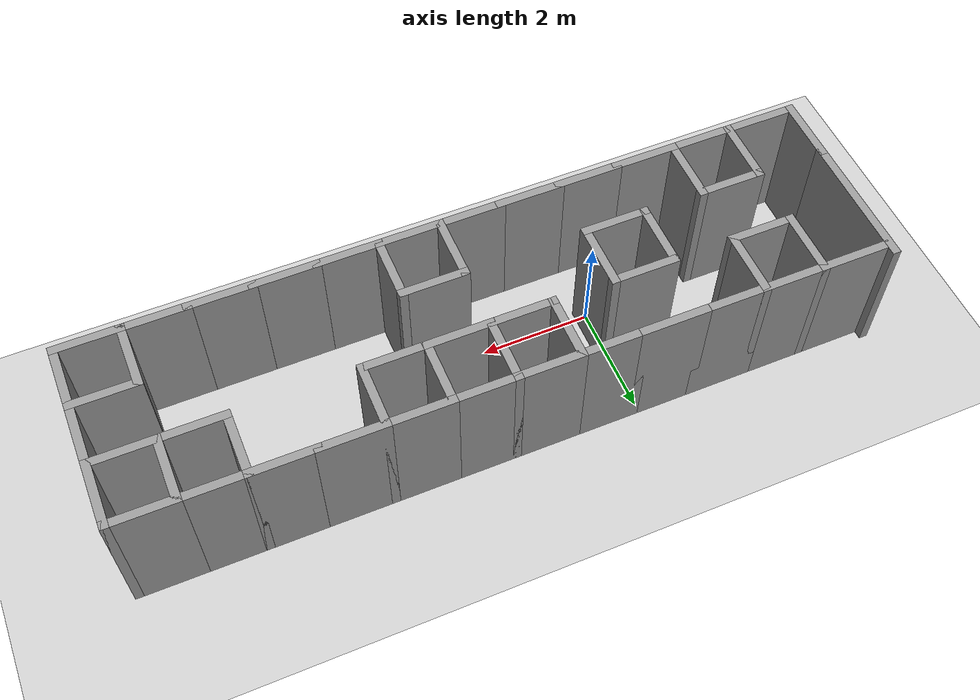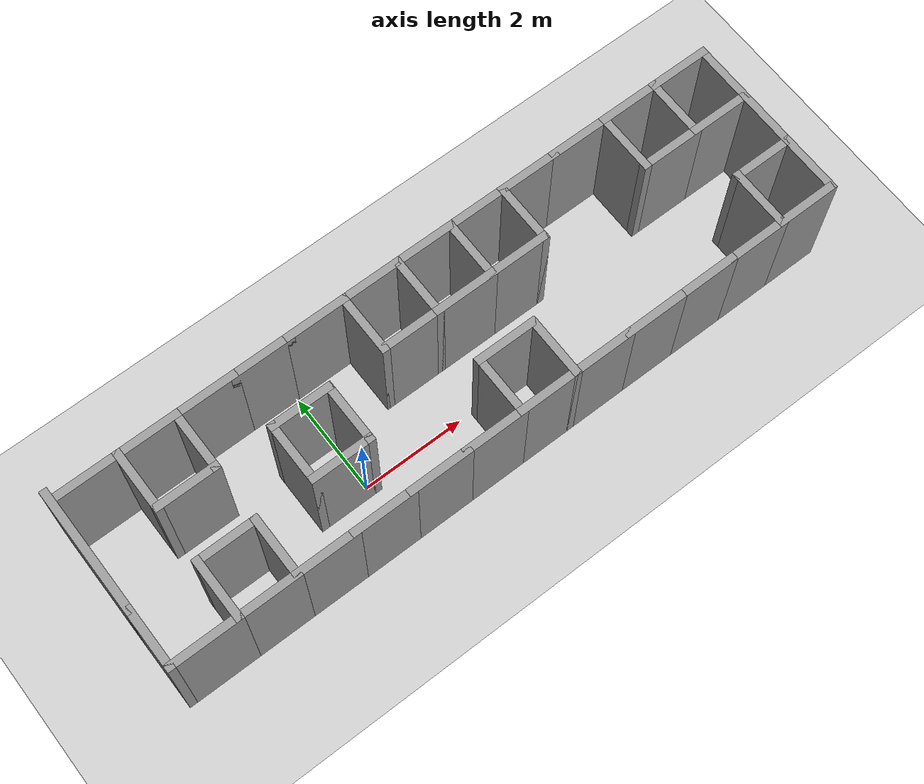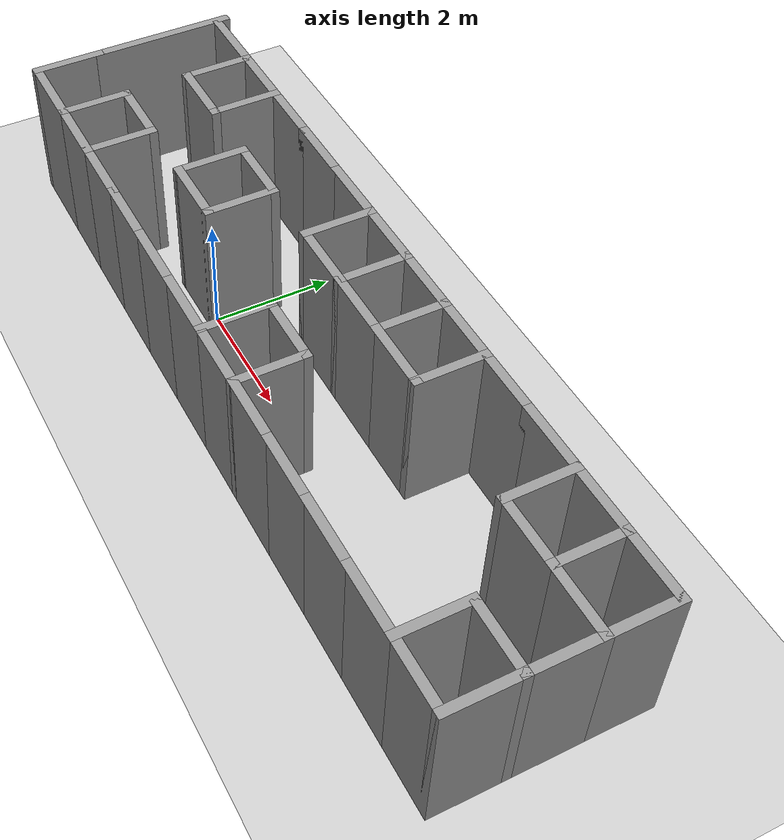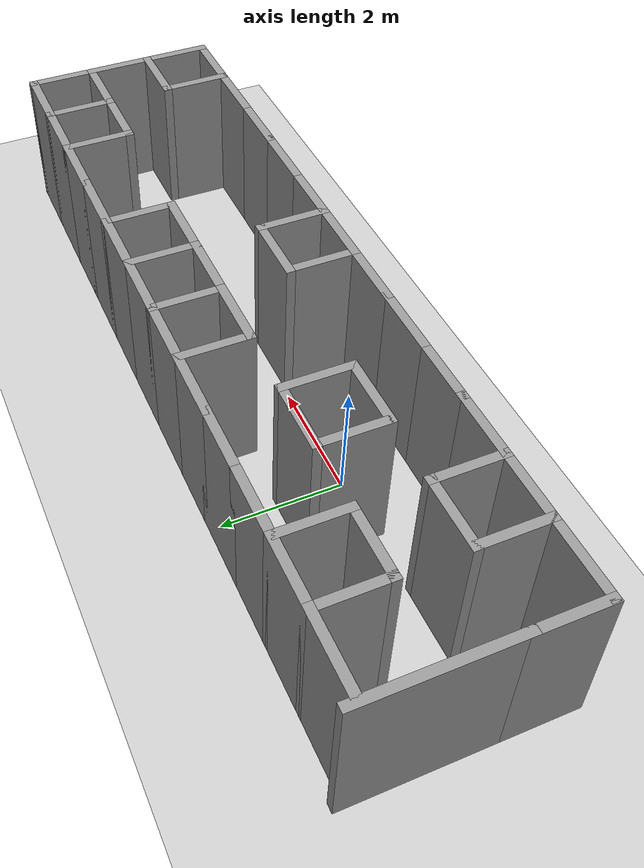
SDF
<sdf version="1.7">
 <world name="default">
  <light name="sun" type="directional">
   <pose>0 0 10 0 -0 0</pose>
   <diffuse>0.8 0.8 0.8 1</diffuse>
   <specular>0.2 0.2 0.2 1</specular>
   <attenuation>
    <range>1000</range>
    <constant>0.9</constant>
    <linear>0.01</linear>
    <quadratic>0.001</quadratic>
   </attenuation>
   <direction>-0.5 0.1 -0.9</direction>
   <spot><inner_angle>0</inner_angle><outer_angle>0</outer_angle><falloff>0</falloff></spot>
  </light>
  <model name="ground_plane">
   <static>1</static>
   <link name="link">
    <collision name="collision">
     <geometry><plane><normal>0 0 1</normal><size>100 100</size></plane></geometry>
     <surface>
      <contact><collide_bitmask>65535</collide_bitmask></contact>
      <friction><ode><mu>100</mu><mu2>50</mu2></ode></friction>
     </surface>
    </collision>
    <visual name="visual">
     <cast_shadows>0</cast_shadows>
     <geometry><plane><normal>0 0 1</normal><size>100 100</size></plane></geometry>
     <material>
      <script><uri>file://media/materials/scripts/gazebo.material</uri><name>Gazebo/Grey</name></script>
     </material>
    </visual>
   </link>
  </model>
  <gravity>0 0 -9.8</gravity>
  <magnetic_field>6e-06 2.3e-05 -4.2e-05</magnetic_field>
  <atmosphere type="adiabatic"/>
  <physics type="ode">
   <max_step_size>0.001</max_step_size>
   <real_time_factor>1</real_time_factor>
   <real_time_update_rate>1000</real_time_update_rate>
  </physics>
  <scene><ambient>0.4 0.4 0.4 1</ambient><background>0.7 0.7 0.7 1</background><shadows>1</shadows></scene>
  <audio><device>default</device></audio>
  <spherical_coordinates>
   <surface_model>EARTH_WGS84</surface_model>
   <latitude_deg>0</latitude_deg>
   <longitude_deg>0</longitude_deg>
   <elevation>0</elevation>
   <heading_deg>0</heading_deg>
  </spherical_coordinates>
  <model name="Untitled">
   <pose>2.23568 0.526796 0 0 -0 0</pose>
   <link name="Wall_100">
    <collision name="Wall_100_Collision">
     <geometry><box><size>1.25 0.15 2.5</size></box></geometry>
     <pose>0 0 1.25 0 -0 0</pose>
    </collision>
    <visual name="Wall_100_Visual">
     <pose>0 0 1.25 0 -0 0</pose>
     <geometry><box><size>1.25 0.15 2.5</size></box></geometry>
     <material>
      <script><uri>file://media/materials/scripts/gazebo.material</uri><name>Gazebo/Grey</name></script>
      <ambient>1 1 1 1</ambient>
     </material>
     <meta><layer>0</layer></meta>
    </visual>
    <pose>-2.12037 -0.075 0 0 -0 1.5708</pose>
   </link>
   <link name="Wall_101">
    <collision name="Wall_101_Collision">
     <geometry><box><size>1.25 0.15 2.5</size></box></geometry>
     <pose>0 0 1.25 0 -0 0</pose>
    </collision>
    <visual name="Wall_101_Visual">
     <pose>0 0 1.25 0 -0 0</pose>
     <geometry><box><size>1.25 0.15 2.5</size></box></geometry>
     <material>
      <script><uri>file://media/materials/scripts/gazebo.material</uri><name>Gazebo/Grey</name></script>
      <ambient>1 1 1 1</ambient>
     </material>
     <meta><layer>0</layer></meta>
    </visual>
    <pose>-2.67037 0.475 0 0 -0 3.14159</pose>
   </link>
   <link name="Wall_103">
    <collision name="Wall_103_Collision">
     <geometry><box><size>2.5 0.15 2.5</size></box></geometry>
     <pose>0 0 1.25 0 -0 0</pose>
    </collision>
    <visual name="Wall_103_Visual">
     <pose>0 0 1.25 0 -0 0</pose>
     <geometry><box><size>2.5 0.15 2.5</size></box></geometry>
     <material>
      <script><uri>file://media/materials/scripts/gazebo.material</uri><name>Gazebo/Grey</name></script>
      <ambient>1 1 1 1</ambient>
     </material>
     <meta><layer>0</layer></meta>
    </visual>
    <pose>-6.67963 0.55 0 0 -0 1.5708</pose>
   </link>
   <link name="Wall_15">
    <collision name="Wall_15_Collision">
     <geometry><box><size>1.25 0.15 2.5</size></box></geometry>
     <pose>0 0 1.25 0 -0 0</pose>
    </collision>
    <visual name="Wall_15_Visual">
     <pose>0 0 1.25 0 -0 0</pose>
     <geometry><box><size>1.25 0.15 2.5</size></box></geometry>
     <material>
      <script><uri>file://media/materials/scripts/gazebo.material</uri><name>Gazebo/Grey</name></script>
      <ambient>1 1 1 1</ambient>
     </material>
     <meta><layer>0</layer></meta>
    </visual>
    <pose>5.57963 1.025 0 0 -0 -1.5708</pose>
   </link>
   <link name="Wall_16">
    <collision name="Wall_16_Collision">
     <geometry><box><size>1.25 0.15 2.5</size></box></geometry>
     <pose>0 0 1.25 0 -0 0</pose>
    </collision>
    <visual name="Wall_16_Visual">
     <pose>0 0 1.25 0 -0 0</pose>
     <geometry><box><size>1.25 0.15 2.5</size></box></geometry>
     <material>
      <script><uri>file://media/materials/scripts/gazebo.material</uri><name>Gazebo/Grey</name></script>
      <ambient>1 1 1 1</ambient>
     </material>
     <meta><layer>0</layer></meta>
    </visual>
    <pose>6.12963 0.475 0 0 -0 0</pose>
   </link>
   <link name="Wall_18">
    <collision name="Wall_18_Collision">
     <geometry><box><size>1.25 0.15 2.5</size></box></geometry>
     <pose>0 0 1.25 0 -0 0</pose>
    </collision>
    <visual name="Wall_18_Visual">
     <pose>0 0 1.25 0 -0 0</pose>
     <geometry><box><size>1.25 0.15 2.5</size></box></geometry>
     <material>
      <script><uri>file://media/materials/scripts/gazebo.material</uri><name>Gazebo/Grey</name></script>
      <ambient>1 1 1 1</ambient>
     </material>
     <meta><layer>0</layer></meta>
    </visual>
    <pose>5.02963 0.475 0 0 -0 3.14159</pose>
   </link>
   <link name="Wall_19">
    <collision name="Wall_19_Collision">
     <geometry><box><size>1.25 0.15 2.5</size></box></geometry>
     <pose>0 0 1.25 0 -0 0</pose>
    </collision>
    <visual name="Wall_19_Visual">
     <pose>0 0 1.25 0 -0 0</pose>
     <geometry><box><size>1.25 0.15 2.5</size></box></geometry>
     <material>
      <script><uri>file://media/materials/scripts/gazebo.material</uri><name>Gazebo/Grey</name></script>
      <ambient>1 1 1 1</ambient>
     </material>
     <meta><layer>0</layer></meta>
    </visual>
    <pose>4.47963 1.025 0 0 -0 1.5708</pose>
   </link>
   <link name="Wall_25">
    <collision name="Wall_25_Collision">
     <geometry><box><size>1.25 0.15 2.5</size></box></geometry>
     <pose>0 0 1.25 0 -0 0</pose>
    </collision>
    <visual name="Wall_25_Visual">
     <pose>0 0 1.25 0 -0 0</pose>
     <geometry><box><size>1.25 0.15 2.5</size></box></geometry>
     <material>
      <script><uri>file://media/materials/scripts/gazebo.material</uri><name>Gazebo/Grey</name></script>
      <ambient>1 1 1 1</ambient>
     </material>
     <meta><layer>0</layer></meta>
    </visual>
    <pose>6.12963 -0.625 0 0 -0 3.14159</pose>
   </link>
   <link name="Wall_26">
    <collision name="Wall_26_Collision">
     <geometry><box><size>1.25 0.15 2.5</size></box></geometry>
     <pose>0 0 1.25 0 -0 0</pose>
    </collision>
    <visual name="Wall_26_Visual">
     <pose>0 0 1.25 0 -0 0</pose>
     <geometry><box><size>1.25 0.15 2.5</size></box></geometry>
     <material>
      <script><uri>file://media/materials/scripts/gazebo.material</uri><name>Gazebo/Grey</name></script>
      <ambient>1 1 1 1</ambient>
     </material>
     <meta><layer>0</layer></meta>
    </visual>
    <pose>5.57963 -1.175 0 0 -0 -1.5708</pose>
   </link>
   <link name="Wall_27">
    <collision name="Wall_27_Collision">
     <geometry><box><size>1.25 0.15 2.5</size></box></geometry>
     <pose>0 0 1.25 0 -0 0</pose>
    </collision>
    <visual name="Wall_27_Visual">
     <pose>0 0 1.25 0 -0 0</pose>
     <geometry><box><size>1.25 0.15 2.5</size></box></geometry>
     <material>
      <script><uri>file://media/materials/scripts/gazebo.material</uri><name>Gazebo/Grey</name></script>
      <ambient>1 1 1 1</ambient>
     </material>
     <meta><layer>0</layer></meta>
    </visual>
    <pose>6.12963 -1.725 0 0 -0 0</pose>
   </link>
   <link name="Wall_28">
    <collision name="Wall_28_Collision">
     <geometry><box><size>1.25 0.15 2.5</size></box></geometry>
     <pose>0 0 1.25 0 -0 0</pose>
    </collision>
    <visual name="Wall_28_Visual">
     <pose>0 0 1.25 0 -0 0</pose>
     <geometry><box><size>1.25 0.15 2.5</size></box></geometry>
     <material>
      <script><uri>file://media/materials/scripts/gazebo.material</uri><name>Gazebo/Grey</name></script>
      <ambient>1 1 1 1</ambient>
     </material>
     <meta><layer>0</layer></meta>
    </visual>
    <pose>6.67963 -1.175 0 0 -0 1.5708</pose>
   </link>
   <link name="Wall_30">
    <collision name="Wall_30_Collision">
     <geometry><box><size>1.25 0.15 2.5</size></box></geometry>
     <pose>0 0 1.25 0 -0 0</pose>
    </collision>
    <visual name="Wall_30_Visual">
     <pose>0 0 1.25 0 -0 0</pose>
     <geometry><box><size>1.25 0.15 2.5</size></box></geometry>
     <material>
      <script><uri>file://media/materials/scripts/gazebo.material</uri><name>Gazebo/Grey</name></script>
      <ambient>1 1 1 1</ambient>
     </material>
     <meta><layer>0</layer></meta>
    </visual>
    <pose>6.67963 1.025 0 0 -0 -1.5708</pose>
   </link>
   <link name="Wall_31">
    <collision name="Wall_31_Collision">
     <geometry><box><size>1.25 0.15 2.5</size></box></geometry>
     <pose>0 0 1.25 0 -0 0</pose>
    </collision>
    <visual name="Wall_31_Visual">
     <pose>0 0 1.25 0 -0 0</pose>
     <geometry><box><size>1.25 0.15 2.5</size></box></geometry>
     <material>
      <script><uri>file://media/materials/scripts/gazebo.material</uri><name>Gazebo/Grey</name></script>
      <ambient>1 1 1 1</ambient>
     </material>
     <meta><layer>0</layer></meta>
    </visual>
    <pose>6.67963 -0.075 0 0 -0 -1.5708</pose>
   </link>
   <link name="Wall_41">
    <collision name="Wall_41_Collision">
     <geometry><box><size>1.25 0.15 2.5</size></box></geometry>
     <pose>0 0 1.25 0 -0 0</pose>
    </collision>
    <visual name="Wall_41_Visual">
     <pose>0 0 1.25 0 -0 0</pose>
     <geometry><box><size>1.25 0.15 2.5</size></box></geometry>
     <material>
      <script><uri>file://media/materials/scripts/gazebo.material</uri><name>Gazebo/Grey</name></script>
      <ambient>1 1 1 1</ambient>
     </material>
     <meta><layer>0</layer></meta>
    </visual>
    <pose>5.02963 -1.725 0 0 -0 3.14159</pose>
   </link>
   <link name="Wall_42">
    <collision name="Wall_42_Collision">
     <geometry><box><size>1.25 0.15 2.5</size></box></geometry>
     <pose>0 0 1.25 0 -0 0</pose>
    </collision>
    <visual name="Wall_42_Visual">
     <pose>0 0 1.25 0 -0 0</pose>
     <geometry><box><size>1.25 0.15 2.5</size></box></geometry>
     <material>
      <script><uri>file://media/materials/scripts/gazebo.material</uri><name>Gazebo/Grey</name></script>
      <ambient>1 1 1 1</ambient>
     </material>
     <meta><layer>0</layer></meta>
    </visual>
    <pose>3.92963 -1.725 0 0 -0 3.14159</pose>
   </link>
   <link name="Wall_43">
    <collision name="Wall_43_Collision">
     <geometry><box><size>1.25 0.15 2.5</size></box></geometry>
     <pose>0 0 1.25 0 -0 0</pose>
    </collision>
    <visual name="Wall_43_Visual">
     <pose>0 0 1.25 0 -0 0</pose>
     <geometry><box><size>1.25 0.15 2.5</size></box></geometry>
     <material>
      <script><uri>file://media/materials/scripts/gazebo.material</uri><name>Gazebo/Grey</name></script>
      <ambient>1 1 1 1</ambient>
     </material>
     <meta><layer>0</layer></meta>
    </visual>
    <pose>2.82963 -1.725 0 0 -0 3.14159</pose>
   </link>
   <link name="Wall_44">
    <collision name="Wall_44_Collision">
     <geometry><box><size>1.25 0.15 2.5</size></box></geometry>
     <pose>0 0 1.25 0 -0 0</pose>
    </collision>
    <visual name="Wall_44_Visual">
     <pose>0 0 1.25 0 -0 0</pose>
     <geometry><box><size>1.25 0.15 2.5</size></box></geometry>
     <material>
      <script><uri>file://media/materials/scripts/gazebo.material</uri><name>Gazebo/Grey</name></script>
      <ambient>1 1 1 1</ambient>
     </material>
     <meta><layer>0</layer></meta>
    </visual>
    <pose>1.72963 -1.725 0 0 -0 3.14159</pose>
   </link>
   <link name="Wall_45">
    <collision name="Wall_45_Collision">
     <geometry><box><size>1.25 0.15 2.5</size></box></geometry>
     <pose>0 0 1.25 0 -0 0</pose>
    </collision>
    <visual name="Wall_45_Visual">
     <pose>0 0 1.25 0 -0 0</pose>
     <geometry><box><size>1.25 0.15 2.5</size></box></geometry>
     <material>
      <script><uri>file://media/materials/scripts/gazebo.material</uri><name>Gazebo/Grey</name></script>
      <ambient>1 1 1 1</ambient>
     </material>
     <meta><layer>0</layer></meta>
    </visual>
    <pose>1.17963 -1.175 0 0 -0 1.5708</pose>
   </link>
   <link name="Wall_46">
    <collision name="Wall_46_Collision">
     <geometry><box><size>1.25 0.15 2.5</size></box></geometry>
     <pose>0 0 1.25 0 -0 0</pose>
    </collision>
    <visual name="Wall_46_Visual">
     <pose>0 0 1.25 0 -0 0</pose>
     <geometry><box><size>1.25 0.15 2.5</size></box></geometry>
     <material>
      <script><uri>file://media/materials/scripts/gazebo.material</uri><name>Gazebo/Grey</name></script>
      <ambient>1 1 1 1</ambient>
     </material>
     <meta><layer>0</layer></meta>
    </visual>
    <pose>0.629632 -0.625 0 0 -0 3.14159</pose>
   </link>
   <link name="Wall_47">
    <collision name="Wall_47_Collision">
     <geometry><box><size>1.25 0.15 2.5</size></box></geometry>
     <pose>0 0 1.25 0 -0 0</pose>
    </collision>
    <visual name="Wall_47_Visual">
     <pose>0 0 1.25 0 -0 0</pose>
     <geometry><box><size>1.25 0.15 2.5</size></box></geometry>
     <material>
      <script><uri>file://media/materials/scripts/gazebo.material</uri><name>Gazebo/Grey</name></script>
      <ambient>1 1 1 1</ambient>
     </material>
     <meta><layer>0</layer></meta>
    </visual>
    <pose>0.079632 -1.175 0 0 -0 -1.5708</pose>
   </link>
   <link name="Wall_49">
    <collision name="Wall_49_Collision">
     <geometry><box><size>1.25 0.15 2.5</size></box></geometry>
     <pose>0 0 1.25 0 -0 0</pose>
    </collision>
    <visual name="Wall_49_Visual">
     <pose>0 0 1.25 0 -0 0</pose>
     <geometry><box><size>1.25 0.15 2.5</size></box></geometry>
     <material>
      <script><uri>file://media/materials/scripts/gazebo.material</uri><name>Gazebo/Grey</name></script>
      <ambient>1 1 1 1</ambient>
     </material>
     <meta><layer>0</layer></meta>
    </visual>
    <pose>0.629632 -1.725 0 0 -0 0</pose>
   </link>
   <link name="Wall_51">
    <collision name="Wall_51_Collision">
     <geometry><box><size>1.25 0.15 2.5</size></box></geometry>
     <pose>0 0 1.25 0 -0 0</pose>
    </collision>
    <visual name="Wall_51_Visual">
     <pose>0 0 1.25 0 -0 0</pose>
     <geometry><box><size>1.25 0.15 2.5</size></box></geometry>
     <material>
      <script><uri>file://media/materials/scripts/gazebo.material</uri><name>Gazebo/Grey</name></script>
      <ambient>1 1 1 1</ambient>
     </material>
     <meta><layer>0</layer></meta>
    </visual>
    <pose>-0.470368 -1.725 0 0 -0 3.14159</pose>
   </link>
   <link name="Wall_52">
    <collision name="Wall_52_Collision">
     <geometry><box><size>1.25 0.15 2.5</size></box></geometry>
     <pose>0 0 1.25 0 -0 0</pose>
    </collision>
    <visual name="Wall_52_Visual">
     <pose>0 0 1.25 0 -0 0</pose>
     <geometry><box><size>1.25 0.15 2.5</size></box></geometry>
     <material>
      <script><uri>file://media/materials/scripts/gazebo.material</uri><name>Gazebo/Grey</name></script>
      <ambient>1 1 1 1</ambient>
     </material>
     <meta><layer>0</layer></meta>
    </visual>
    <pose>-1.57037 -1.725 0 0 -0 3.14159</pose>
   </link>
   <link name="Wall_53">
    <collision name="Wall_53_Collision">
     <geometry><box><size>1.25 0.15 2.5</size></box></geometry>
     <pose>0 0 1.25 0 -0 0</pose>
    </collision>
    <visual name="Wall_53_Visual">
     <pose>0 0 1.25 0 -0 0</pose>
     <geometry><box><size>1.25 0.15 2.5</size></box></geometry>
     <material>
      <script><uri>file://media/materials/scripts/gazebo.material</uri><name>Gazebo/Grey</name></script>
      <ambient>1 1 1 1</ambient>
     </material>
     <meta><layer>0</layer></meta>
    </visual>
    <pose>-2.67037 -1.725 0 0 -0 3.14159</pose>
   </link>
   <link name="Wall_54">
    <collision name="Wall_54_Collision">
     <geometry><box><size>1.25 0.15 2.5</size></box></geometry>
     <pose>0 0 1.25 0 -0 0</pose>
    </collision>
    <visual name="Wall_54_Visual">
     <pose>0 0 1.25 0 -0 0</pose>
     <geometry><box><size>1.25 0.15 2.5</size></box></geometry>
     <material>
      <script><uri>file://media/materials/scripts/gazebo.material</uri><name>Gazebo/Grey</name></script>
      <ambient>1 1 1 1</ambient>
     </material>
     <meta><layer>0</layer></meta>
    </visual>
    <pose>-3.77037 -1.725 0 0 -0 3.14159</pose>
   </link>
   <link name="Wall_55">
    <collision name="Wall_55_Collision">
     <geometry><box><size>1.25 0.15 2.5</size></box></geometry>
     <pose>0 0 1.25 0 -0 0</pose>
    </collision>
    <visual name="Wall_55_Visual">
     <pose>0 0 1.25 0 -0 0</pose>
     <geometry><box><size>1.25 0.15 2.5</size></box></geometry>
     <material>
      <script><uri>file://media/materials/scripts/gazebo.material</uri><name>Gazebo/Grey</name></script>
      <ambient>1 1 1 1</ambient>
     </material>
     <meta><layer>0</layer></meta>
    </visual>
    <pose>-4.32037 -1.175 0 0 -0 1.5708</pose>
   </link>
   <link name="Wall_56">
    <collision name="Wall_56_Collision">
     <geometry><box><size>1.25 0.15 2.5</size></box></geometry>
     <pose>0 0 1.25 0 -0 0</pose>
    </collision>
    <visual name="Wall_56_Visual">
     <pose>0 0 1.25 0 -0 0</pose>
     <geometry><box><size>1.25 0.15 2.5</size></box></geometry>
     <material>
      <script><uri>file://media/materials/scripts/gazebo.material</uri><name>Gazebo/Grey</name></script>
      <ambient>1 1 1 1</ambient>
     </material>
     <meta><layer>0</layer></meta>
    </visual>
    <pose>-4.87037 -0.625 0 0 -0 3.14159</pose>
   </link>
   <link name="Wall_57">
    <collision name="Wall_57_Collision">
     <geometry><box><size>1.25 0.15 2.5</size></box></geometry>
     <pose>0 0 1.25 0 -0 0</pose>
    </collision>
    <visual name="Wall_57_Visual">
     <pose>0 0 1.25 0 -0 0</pose>
     <geometry><box><size>1.25 0.15 2.5</size></box></geometry>
     <material>
      <script><uri>file://media/materials/scripts/gazebo.material</uri><name>Gazebo/Grey</name></script>
      <ambient>1 1 1 1</ambient>
     </material>
     <meta><layer>0</layer></meta>
    </visual>
    <pose>-5.42037 -1.175 0 0 -0 -1.5708</pose>
   </link>
   <link name="Wall_59">
    <collision name="Wall_59_Collision">
     <geometry><box><size>1.25 0.15 2.5</size></box></geometry>
     <pose>0 0 1.25 0 -0 0</pose>
    </collision>
    <visual name="Wall_59_Visual">
     <pose>0 0 1.25 0 -0 0</pose>
     <geometry><box><size>1.25 0.15 2.5</size></box></geometry>
     <material>
      <script><uri>file://media/materials/scripts/gazebo.material</uri><name>Gazebo/Grey</name></script>
      <ambient>1 1 1 1</ambient>
     </material>
     <meta><layer>0</layer></meta>
    </visual>
    <pose>-4.87037 -1.725 0 0 -0 3.14159</pose>
   </link>
   <link name="Wall_60">
    <collision name="Wall_60_Collision">
     <geometry><box><size>1.39414 0.15 2.5</size></box></geometry>
     <pose>0 0 1.25 0 -0 0</pose>
    </collision>
    <visual name="Wall_60_Visual">
     <pose>0 0 1.25 0 -0 0</pose>
     <geometry><box><size>1.39414 0.15 2.5</size></box></geometry>
     <material>
      <script><uri>file://media/materials/scripts/gazebo.material</uri><name>Gazebo/Grey</name></script>
      <ambient>1 1 1 1</ambient>
     </material>
     <meta><layer>0</layer></meta>
    </visual>
    <pose>-6.04244 -1.725 0 0 -0 3.14159</pose>
   </link>
   <link name="Wall_61">
    <collision name="Wall_61_Collision">
     <geometry><box><size>1.25 0.15 2.5</size></box></geometry>
     <pose>0 0 1.25 0 -0 0</pose>
    </collision>
    <visual name="Wall_61_Visual">
     <pose>0 0 1.25 0 -0 0</pose>
     <geometry><box><size>1.25 0.15 2.5</size></box></geometry>
     <material>
      <script><uri>file://media/materials/scripts/gazebo.material</uri><name>Gazebo/Grey</name></script>
      <ambient>1 1 1 1</ambient>
     </material>
     <meta><layer>0</layer></meta>
    </visual>
    <pose>-6.67963 -1.175 0 0 -0 1.5708</pose>
   </link>
   <link name="Wall_67">
    <collision name="Wall_67_Collision">
     <geometry><box><size>1.32609 0.15 2.5</size></box></geometry>
     <pose>0 0 1.25 0 -0 0</pose>
    </collision>
    <visual name="Wall_67_Visual">
     <pose>0 0 1.25 0 -0 0</pose>
     <geometry><box><size>1.32609 0.15 2.5</size></box></geometry>
     <material>
      <script><uri>file://media/materials/scripts/gazebo.material</uri><name>Gazebo/Grey</name></script>
      <ambient>1 1 1 1</ambient>
     </material>
     <meta><layer>0</layer></meta>
    </visual>
    <pose>-6.00841 1.575 0 0 -0 0</pose>
   </link>
   <link name="Wall_68">
    <collision name="Wall_68_Collision">
     <geometry><box><size>1.25 0.15 2.5</size></box></geometry>
     <pose>0 0 1.25 0 -0 0</pose>
    </collision>
    <visual name="Wall_68_Visual">
     <pose>0 0 1.25 0 -0 0</pose>
     <geometry><box><size>1.25 0.15 2.5</size></box></geometry>
     <material>
      <script><uri>file://media/materials/scripts/gazebo.material</uri><name>Gazebo/Grey</name></script>
      <ambient>1 1 1 1</ambient>
     </material>
     <meta><layer>0</layer></meta>
    </visual>
    <pose>-4.87037 1.575 0 0 -0 0</pose>
   </link>
   <link name="Wall_69">
    <collision name="Wall_69_Collision">
     <geometry><box><size>1.25 0.15 2.5</size></box></geometry>
     <pose>0 0 1.25 0 -0 0</pose>
    </collision>
    <visual name="Wall_69_Visual">
     <pose>0 0 1.25 0 -0 0</pose>
     <geometry><box><size>1.25 0.15 2.5</size></box></geometry>
     <material>
      <script><uri>file://media/materials/scripts/gazebo.material</uri><name>Gazebo/Grey</name></script>
      <ambient>1 1 1 1</ambient>
     </material>
     <meta><layer>0</layer></meta>
    </visual>
    <pose>-4.32037 1.025 0 0 -0 -1.5708</pose>
   </link>
   <link name="Wall_70">
    <collision name="Wall_70_Collision">
     <geometry><box><size>1.25 0.15 2.5</size></box></geometry>
     <pose>0 0 1.25 0 -0 0</pose>
    </collision>
    <visual name="Wall_70_Visual">
     <pose>0 0 1.25 0 -0 0</pose>
     <geometry><box><size>1.25 0.15 2.5</size></box></geometry>
     <material>
      <script><uri>file://media/materials/scripts/gazebo.material</uri><name>Gazebo/Grey</name></script>
      <ambient>1 1 1 1</ambient>
     </material>
     <meta><layer>0</layer></meta>
    </visual>
    <pose>-4.87037 0.475 0 0 -0 3.14159</pose>
   </link>
   <link name="Wall_71">
    <collision name="Wall_71_Collision">
     <geometry><box><size>1.25 0.15 2.5</size></box></geometry>
     <pose>0 0 1.25 0 -0 0</pose>
    </collision>
    <visual name="Wall_71_Visual">
     <pose>0 0 1.25 0 -0 0</pose>
     <geometry><box><size>1.25 0.15 2.5</size></box></geometry>
     <material>
      <script><uri>file://media/materials/scripts/gazebo.material</uri><name>Gazebo/Grey</name></script>
      <ambient>1 1 1 1</ambient>
     </material>
     <meta><layer>0</layer></meta>
    </visual>
    <pose>-5.42037 1.025 0 0 -0 1.5708</pose>
   </link>
   <link name="Wall_73">
    <collision name="Wall_73_Collision">
     <geometry><box><size>1.25 0.15 2.5</size></box></geometry>
     <pose>0 0 1.25 0 -0 0</pose>
    </collision>
    <visual name="Wall_73_Visual">
     <pose>0 0 1.25 0 -0 0</pose>
     <geometry><box><size>1.25 0.15 2.5</size></box></geometry>
     <material>
      <script><uri>file://media/materials/scripts/gazebo.material</uri><name>Gazebo/Grey</name></script>
      <ambient>1 1 1 1</ambient>
     </material>
     <meta><layer>0</layer></meta>
    </visual>
    <pose>-3.77037 1.575 0 0 -0 0</pose>
   </link>
   <link name="Wall_74">
    <collision name="Wall_74_Collision">
     <geometry><box><size>1.25 0.15 2.5</size></box></geometry>
     <pose>0 0 1.25 0 -0 0</pose>
    </collision>
    <visual name="Wall_74_Visual">
     <pose>0 0 1.25 0 -0 0</pose>
     <geometry><box><size>1.25 0.15 2.5</size></box></geometry>
     <material>
      <script><uri>file://media/materials/scripts/gazebo.material</uri><name>Gazebo/Grey</name></script>
      <ambient>1 1 1 1</ambient>
     </material>
     <meta><layer>0</layer></meta>
    </visual>
    <pose>-2.67037 1.575 0 0 -0 0</pose>
   </link>
   <link name="Wall_75">
    <collision name="Wall_75_Collision">
     <geometry><box><size>1.25 0.15 2.5</size></box></geometry>
     <pose>0 0 1.25 0 -0 0</pose>
    </collision>
    <visual name="Wall_75_Visual">
     <pose>0 0 1.25 0 -0 0</pose>
     <geometry><box><size>1.25 0.15 2.5</size></box></geometry>
     <material>
      <script><uri>file://media/materials/scripts/gazebo.material</uri><name>Gazebo/Grey</name></script>
      <ambient>1 1 1 1</ambient>
     </material>
     <meta><layer>0</layer></meta>
    </visual>
    <pose>-1.57037 1.575 0 0 -0 0</pose>
   </link>
   <link name="Wall_76">
    <collision name="Wall_76_Collision">
     <geometry><box><size>1.25 0.15 2.5</size></box></geometry>
     <pose>0 0 1.25 0 -0 0</pose>
    </collision>
    <visual name="Wall_76_Visual">
     <pose>0 0 1.25 0 -0 0</pose>
     <geometry><box><size>1.25 0.15 2.5</size></box></geometry>
     <material>
      <script><uri>file://media/materials/scripts/gazebo.material</uri><name>Gazebo/Grey</name></script>
      <ambient>1 1 1 1</ambient>
     </material>
     <meta><layer>0</layer></meta>
    </visual>
    <pose>-1.02037 1.025 0 0 -0 -1.5708</pose>
   </link>
   <link name="Wall_78">
    <collision name="Wall_78_Collision">
     <geometry><box><size>1.25 0.15 2.5</size></box></geometry>
     <pose>0 0 1.25 0 -0 0</pose>
    </collision>
    <visual name="Wall_78_Visual">
     <pose>0 0 1.25 0 -0 0</pose>
     <geometry><box><size>1.25 0.15 2.5</size></box></geometry>
     <material>
      <script><uri>file://media/materials/scripts/gazebo.material</uri><name>Gazebo/Grey</name></script>
      <ambient>1 1 1 1</ambient>
     </material>
     <meta><layer>0</layer></meta>
    </visual>
    <pose>-0.470368 0.475 0 0 -0 0</pose>
   </link>
   <link name="Wall_79">
    <collision name="Wall_79_Collision">
     <geometry><box><size>1.25 0.15 2.5</size></box></geometry>
     <pose>0 0 1.25 0 -0 0</pose>
    </collision>
    <visual name="Wall_79_Visual">
     <pose>0 0 1.25 0 -0 0</pose>
     <geometry><box><size>1.25 0.15 2.5</size></box></geometry>
     <material>
      <script><uri>file://media/materials/scripts/gazebo.material</uri><name>Gazebo/Grey</name></script>
      <ambient>1 1 1 1</ambient>
     </material>
     <meta><layer>0</layer></meta>
    </visual>
    <pose>0.079632 1.025 0 0 -0 1.5708</pose>
   </link>
   <link name="Wall_80">
    <collision name="Wall_80_Collision">
     <geometry><box><size>1.25 0.15 2.5</size></box></geometry>
     <pose>0 0 1.25 0 -0 0</pose>
    </collision>
    <visual name="Wall_80_Visual">
     <pose>0 0 1.25 0 -0 0</pose>
     <geometry><box><size>1.25 0.15 2.5</size></box></geometry>
     <material>
      <script><uri>file://media/materials/scripts/gazebo.material</uri><name>Gazebo/Grey</name></script>
      <ambient>1 1 1 1</ambient>
     </material>
     <meta><layer>0</layer></meta>
    </visual>
    <pose>0.629632 1.575 0 0 -0 0</pose>
   </link>
   <link name="Wall_81">
    <collision name="Wall_81_Collision">
     <geometry><box><size>1.25 0.15 2.5</size></box></geometry>
     <pose>0 0 1.25 0 -0 0</pose>
    </collision>
    <visual name="Wall_81_Visual">
     <pose>0 0 1.25 0 -0 0</pose>
     <geometry><box><size>1.25 0.15 2.5</size></box></geometry>
     <material>
      <script><uri>file://media/materials/scripts/gazebo.material</uri><name>Gazebo/Grey</name></script>
      <ambient>1 1 1 1</ambient>
     </material>
     <meta><layer>0</layer></meta>
    </visual>
    <pose>1.17963 1.025 0 0 -0 -1.5708</pose>
   </link>
   <link name="Wall_82">
    <collision name="Wall_82_Collision">
     <geometry><box><size>1.25 0.15 2.5</size></box></geometry>
     <pose>0 0 1.25 0 -0 0</pose>
    </collision>
    <visual name="Wall_82_Visual">
     <pose>0 0 1.25 0 -0 0</pose>
     <geometry><box><size>1.25 0.15 2.5</size></box></geometry>
     <material>
      <script><uri>file://media/materials/scripts/gazebo.material</uri><name>Gazebo/Grey</name></script>
      <ambient>1 1 1 1</ambient>
     </material>
     <meta><layer>0</layer></meta>
    </visual>
    <pose>0.629632 0.475 0 0 -0 3.14159</pose>
   </link>
   <link name="Wall_84">
    <collision name="Wall_84_Collision">
     <geometry><box><size>1.25 0.15 2.5</size></box></geometry>
     <pose>0 0 1.25 0 -0 0</pose>
    </collision>
    <visual name="Wall_84_Visual">
     <pose>0 0 1.25 0 -0 0</pose>
     <geometry><box><size>1.25 0.15 2.5</size></box></geometry>
     <material>
      <script><uri>file://media/materials/scripts/gazebo.material</uri><name>Gazebo/Grey</name></script>
      <ambient>1 1 1 1</ambient>
     </material>
     <meta><layer>0</layer></meta>
    </visual>
    <pose>1.72963 0.475 0 0 -0 0</pose>
   </link>
   <link name="Wall_85">
    <collision name="Wall_85_Collision">
     <geometry><box><size>1.25 0.15 2.5</size></box></geometry>
     <pose>0 0 1.25 0 -0 0</pose>
    </collision>
    <visual name="Wall_85_Visual">
     <pose>0 0 1.25 0 -0 0</pose>
     <geometry><box><size>1.25 0.15 2.5</size></box></geometry>
     <material>
      <script><uri>file://media/materials/scripts/gazebo.material</uri><name>Gazebo/Grey</name></script>
      <ambient>1 1 1 1</ambient>
     </material>
     <meta><layer>0</layer></meta>
    </visual>
    <pose>2.27963 1.025 0 0 -0 1.5708</pose>
   </link>
   <link name="Wall_86">
    <collision name="Wall_86_Collision">
     <geometry><box><size>1.25 0.15 2.5</size></box></geometry>
     <pose>0 0 1.25 0 -0 0</pose>
    </collision>
    <visual name="Wall_86_Visual">
     <pose>0 0 1.25 0 -0 0</pose>
     <geometry><box><size>1.25 0.15 2.5</size></box></geometry>
     <material>
      <script><uri>file://media/materials/scripts/gazebo.material</uri><name>Gazebo/Grey</name></script>
      <ambient>1 1 1 1</ambient>
     </material>
     <meta><layer>0</layer></meta>
    </visual>
    <pose>1.72963 1.575 0 0 -0 3.14159</pose>
   </link>
   <link name="Wall_88">
    <collision name="Wall_88_Collision">
     <geometry><box><size>1.25 0.15 2.5</size></box></geometry>
     <pose>0 0 1.25 0 -0 0</pose>
    </collision>
    <visual name="Wall_88_Visual">
     <pose>0 0 1.25 0 -0 0</pose>
     <geometry><box><size>1.25 0.15 2.5</size></box></geometry>
     <material>
      <script><uri>file://media/materials/scripts/gazebo.material</uri><name>Gazebo/Grey</name></script>
      <ambient>1 1 1 1</ambient>
     </material>
     <meta><layer>0</layer></meta>
    </visual>
    <pose>-0.470368 1.575 0 0 -0 3.14159</pose>
   </link>
   <link name="Wall_90">
    <collision name="Wall_90_Collision">
     <geometry><box><size>1.25 0.15 2.5</size></box></geometry>
     <pose>0 0 1.25 0 -0 0</pose>
    </collision>
    <visual name="Wall_90_Visual">
     <pose>0 0 1.25 0 -0 0</pose>
     <geometry><box><size>1.25 0.15 2.5</size></box></geometry>
     <material>
      <script><uri>file://media/materials/scripts/gazebo.material</uri><name>Gazebo/Grey</name></script>
      <ambient>1 1 1 1</ambient>
     </material>
     <meta><layer>0</layer></meta>
    </visual>
    <pose>2.82963 1.575 0 0 -0 0</pose>
   </link>
   <link name="Wall_91">
    <collision name="Wall_91_Collision">
     <geometry><box><size>1.25 0.15 2.5</size></box></geometry>
     <pose>0 0 1.25 0 -0 0</pose>
    </collision>
    <visual name="Wall_91_Visual">
     <pose>0 0 1.25 0 -0 0</pose>
     <geometry><box><size>1.25 0.15 2.5</size></box></geometry>
     <material>
      <script><uri>file://media/materials/scripts/gazebo.material</uri><name>Gazebo/Grey</name></script>
      <ambient>1 1 1 1</ambient>
     </material>
     <meta><layer>0</layer></meta>
    </visual>
    <pose>3.92963 1.575 0 0 -0 0</pose>
   </link>
   <link name="Wall_92">
    <collision name="Wall_92_Collision">
     <geometry><box><size>1.25 0.15 2.5</size></box></geometry>
     <pose>0 0 1.25 0 -0 0</pose>
    </collision>
    <visual name="Wall_92_Visual">
     <pose>0 0 1.25 0 -0 0</pose>
     <geometry><box><size>1.25 0.15 2.5</size></box></geometry>
     <material>
      <script><uri>file://media/materials/scripts/gazebo.material</uri><name>Gazebo/Grey</name></script>
      <ambient>1 1 1 1</ambient>
     </material>
     <meta><layer>0</layer></meta>
    </visual>
    <pose>5.02963 1.575 0 0 -0 0</pose>
   </link>
   <link name="Wall_94">
    <collision name="Wall_94_Collision">
     <geometry><box><size>1.25 0.15 2.5</size></box></geometry>
     <pose>0 0 1.25 0 -0 0</pose>
    </collision>
    <visual name="Wall_94_Visual">
     <pose>0 0 1.25 0 -0 0</pose>
     <geometry><box><size>1.25 0.15 2.5</size></box></geometry>
     <material>
      <script><uri>file://media/materials/scripts/gazebo.material</uri><name>Gazebo/Grey</name></script>
      <ambient>1 1 1 1</ambient>
     </material>
     <meta><layer>0</layer></meta>
    </visual>
    <pose>6.12963 1.575 0 0 -0 0</pose>
   </link>
   <link name="Wall_96">
    <collision name="Wall_96_Collision">
     <geometry><box><size>1.25 0.15 2.5</size></box></geometry>
     <pose>0 0 1.25 0 -0 0</pose>
    </collision>
    <visual name="Wall_96_Visual">
     <pose>0 0 1.25 0 -0 0</pose>
     <geometry><box><size>1.25 0.15 2.5</size></box></geometry>
     <material>
      <script><uri>file://media/materials/scripts/gazebo.material</uri><name>Gazebo/Grey</name></script>
      <ambient>1 1 1 1</ambient>
     </material>
     <meta><layer>0</layer></meta>
    </visual>
    <pose>-3.77037 1.575 0 0 -0 0</pose>
   </link>
   <link name="Wall_98">
    <collision name="Wall_98_Collision">
     <geometry><box><size>1.25 0.15 2.5</size></box></geometry>
     <pose>0 0 1.25 0 -0 0</pose>
    </collision>
    <visual name="Wall_98_Visual">
     <pose>0 0 1.25 0 -0 0</pose>
     <geometry><box><size>1.25 0.15 2.5</size></box></geometry>
     <material>
      <script><uri>file://media/materials/scripts/gazebo.material</uri><name>Gazebo/Grey</name></script>
      <ambient>1 1 1 1</ambient>
     </material>
     <meta><layer>0</layer></meta>
    </visual>
    <pose>-3.22037 -0.075 0 0 -0 -1.5708</pose>
   </link>
   <link name="Wall_99">
    <collision name="Wall_99_Collision">
     <geometry><box><size>1.25 0.15 2.5</size></box></geometry>
     <pose>0 0 1.25 0 -0 0</pose>
    </collision>
    <visual name="Wall_99_Visual">
     <pose>0 0 1.25 0 -0 0</pose>
     <geometry><box><size>1.25 0.15 2.5</size></box></geometry>
     <material>
      <script><uri>file://media/materials/scripts/gazebo.material</uri><name>Gazebo/Grey</name></script>
      <ambient>1 1 1 1</ambient>
     </material>
     <meta><layer>0</layer></meta>
    </visual>
    <pose>-2.67037 -0.625 0 0 -0 0</pose>
   </link>
   <static>1</static>
  </model>
 </world>
</sdf>
